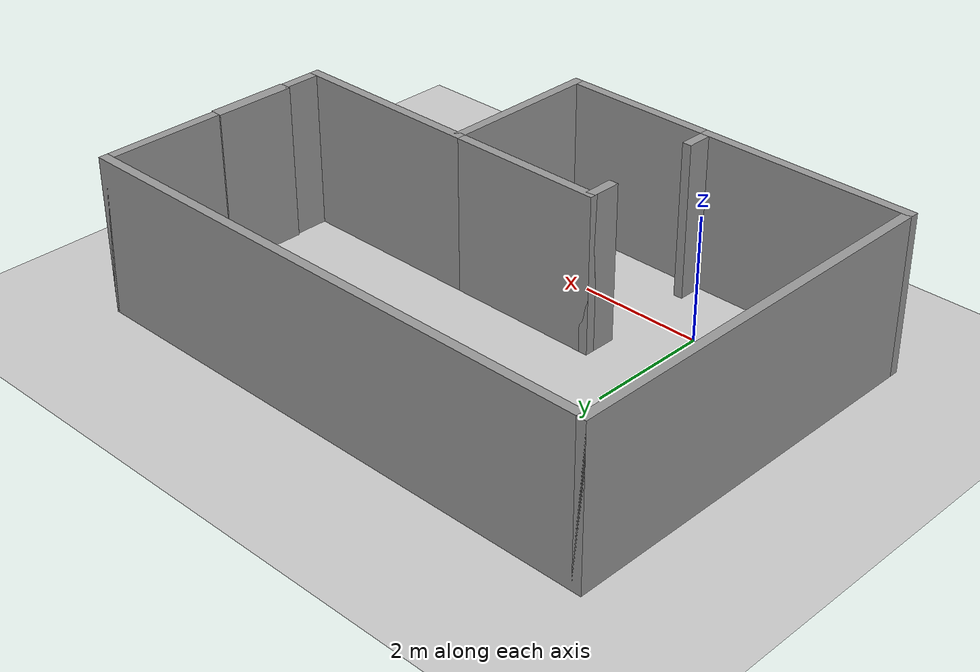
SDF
<sdf version="1.7">
 <world name="default">
  <light name="sun" type="directional">
   <pose>0 0 10 0 -0 0</pose>
   <diffuse>0.8 0.8 0.8 1</diffuse>
   <specular>0.2 0.2 0.2 1</specular>
   <attenuation>
    <range>1000</range>
    <constant>0.9</constant>
    <linear>0.01</linear>
    <quadratic>0.001</quadratic>
   </attenuation>
   <direction>-0.5 0.1 -0.9</direction>
   <spot><inner_angle>0</inner_angle><outer_angle>0</outer_angle><falloff>0</falloff></spot>
  </light>
  <model name="ground_plane">
   <static>1</static>
   <link name="link">
    <collision name="collision">
     <geometry><plane><normal>0 0 1</normal><size>100 100</size></plane></geometry>
     <surface>
      <contact><collide_bitmask>65535</collide_bitmask></contact>
      <friction><ode><mu>100</mu><mu2>50</mu2></ode></friction>
     </surface>
    </collision>
    <visual name="visual">
     <cast_shadows>0</cast_shadows>
     <geometry><plane><normal>0 0 1</normal><size>100 100</size></plane></geometry>
     <material>
      <script><uri>file://media/materials/scripts/gazebo.material</uri><name>Gazebo/Grey</name></script>
     </material>
    </visual>
   </link>
  </model>
  <gravity>0 0 -9.8</gravity>
  <magnetic_field>6e-06 2.3e-05 -4.2e-05</magnetic_field>
  <atmosphere type="adiabatic"/>
  <physics type="ode">
   <max_step_size>0.001</max_step_size>
   <real_time_factor>1</real_time_factor>
   <real_time_update_rate>1000</real_time_update_rate>
  </physics>
  <scene><ambient>0.4 0.4 0.4 1</ambient><background>0.7 0.7 0.7 1</background><shadows>1</shadows></scene>
  <spherical_coordinates>
   <surface_model>EARTH_WGS84</surface_model>
   <latitude_deg>0</latitude_deg>
   <longitude_deg>0</longitude_deg>
   <elevation>0</elevation>
   <heading_deg>0</heading_deg>
  </spherical_coordinates>
  <model name="elevator_room">
   <pose>1.99426 1.9348 0 0 -0 0</pose>
   <link name="Door_0">
    <collision name="Door_0_Collision">
     <geometry><box><size>1.3 0.2 2.5</size></box></geometry>
     <pose>0 0 1.25 0 -0 0</pose>
    </collision>
    <visual name="Door_0_Visual">
     <pose>0 0 1.25 0 -0 0</pose>
     <geometry><box><size>1.3 0.2 2.5</size></box></geometry>
     <material>
      <script><uri>file://media/materials/scripts/gazebo.material</uri><name>Gazebo/Grey</name></script>
     </material>
    </visual>
    <pose>4.42087 0.60726 0 0 -0 -1.5786</pose>
   </link>
   <link name="Wall_10">
    <collision name="Wall_10_Collision">
     <geometry><box><size>0.55 0.15 2.5</size></box></geometry>
     <pose>0 0 1.25 0 -0 0</pose>
    </collision>
    <visual name="Wall_10_Visual">
     <pose>0 0 1.25 0 -0 0</pose>
     <geometry><box><size>0.55 0.15 2.5</size></box></geometry>
     <material>
      <script><uri>file://media/materials/scripts/gazebo.material</uri><name>Gazebo/Grey</name></script>
      <ambient>1 1 1 1</ambient>
     </material>
     <meta><layer>0</layer></meta>
    </visual>
    <pose>-1.075 -2.975 0 0 -0 1.5708</pose>
   </link>
   <link name="Wall_12">
    <collision name="Wall_12_Collision">
     <geometry><box><size>3.5 0.15 2.5</size></box></geometry>
     <pose>0 0 1.25 0 -0 0</pose>
    </collision>
    <visual name="Wall_12_Visual">
     <pose>0 0 1.25 0 -0 0</pose>
     <geometry><box><size>3.5 0.15 2.5</size></box></geometry>
     <material>
      <script><uri>file://media/materials/scripts/gazebo.material</uri><name>Gazebo/Grey</name></script>
      <ambient>1 1 1 1</ambient>
     </material>
     <meta><layer>0</layer></meta>
    </visual>
    <pose>-2.75 -3.175 0 0 -0 3.14159</pose>
   </link>
   <link name="Wall_13">
    <collision name="Wall_13_Collision">
     <geometry><box><size>6.5 0.15 2.5</size></box></geometry>
     <pose>0 0 1.25 0 -0 0</pose>
    </collision>
    <visual name="Wall_13_Visual">
     <pose>0 0 1.25 0 -0 0</pose>
     <geometry><box><size>6.5 0.15 2.5</size></box></geometry>
     <material>
      <script><uri>file://media/materials/scripts/gazebo.material</uri><name>Gazebo/Grey</name></script>
      <ambient>1 1 1 1</ambient>
     </material>
     <meta><layer>0</layer></meta>
    </visual>
    <pose>-4.425 0 0 0 -0 1.5708</pose>
   </link>
   <link name="Wall_14">
    <collision name="Wall_14_Collision">
     <geometry><box><size>9 0.15 2.5</size></box></geometry>
     <pose>0 0 1.25 0 -0 0</pose>
    </collision>
    <visual name="Wall_14_Visual">
     <pose>0 0 1.25 0 -0 0</pose>
     <geometry><box><size>9 0.15 2.5</size></box></geometry>
     <material>
      <script><uri>file://media/materials/scripts/gazebo.material</uri><name>Gazebo/Grey</name></script>
      <ambient>1 1 1 1</ambient>
     </material>
     <meta><layer>0</layer></meta>
    </visual>
    <pose>0 3.175 0 0 -0 0</pose>
   </link>
   <link name="Wall_18">
    <collision name="Wall_18_Collision">
     <geometry><box><size>3.15 0.15 2.5</size></box></geometry>
     <pose>0 0 1.25 0 -0 0</pose>
    </collision>
    <visual name="Wall_18_Visual">
     <pose>0 0 1.25 0 -0 0</pose>
     <geometry><box><size>3.15 0.15 2.5</size></box></geometry>
     <material>
      <script><uri>file://media/materials/scripts/gazebo.material</uri><name>Gazebo/Grey</name></script>
      <ambient>1 1 1 1</ambient>
     </material>
     <meta><layer>0</layer></meta>
    </visual>
    <pose>2.925 -0.675 0 0 -0 3.14159</pose>
   </link>
   <link name="Wall_2">
    <collision name="Wall_2_Collision">
     <geometry><box><size>2.65 0.15 2.5</size></box></geometry>
     <pose>0 0 1.25 0 -0 0</pose>
    </collision>
    <visual name="Wall_2_Visual">
     <pose>0 0 1.25 0 -0 0</pose>
     <geometry><box><size>2.65 0.15 2.5</size></box></geometry>
     <material>
      <script><uri>file://media/materials/scripts/gazebo.material</uri><name>Gazebo/Grey</name></script>
      <ambient>1 1 1 1</ambient>
     </material>
     <meta><layer>0</layer></meta>
    </visual>
    <pose>0.175 -0.675 0 0 -0 0</pose>
   </link>
   <link name="Wall_20">
    <collision name="Wall_20_Collision">
     <geometry><box><size>2 0.15 2.5</size></box></geometry>
     <pose>0 0 1.25 0 -0 0</pose>
    </collision>
    <visual name="Wall_20_Visual">
     <pose>0 0 1.25 0 -0 0</pose>
     <geometry><box><size>2 0.15 2.5</size></box></geometry>
     <material>
      <script><uri>file://media/materials/scripts/gazebo.material</uri><name>Gazebo/Grey</name></script>
      <ambient>1 1 1 1</ambient>
     </material>
     <meta><layer>0</layer></meta>
    </visual>
    <pose>4.425 2.25 0 0 -0 -1.5708</pose>
   </link>
   <link name="Wall_22">
    <collision name="Wall_22_Collision">
     <geometry><box><size>0.75 0.15 2.5</size></box></geometry>
     <pose>0 0 1.25 0 -0 0</pose>
    </collision>
    <visual name="Wall_22_Visual">
     <pose>0 0 1.25 0 -0 0</pose>
     <geometry><box><size>0.75 0.15 2.5</size></box></geometry>
     <material>
      <script><uri>file://media/materials/scripts/gazebo.material</uri><name>Gazebo/Grey</name></script>
      <ambient>1 1 1 1</ambient>
     </material>
     <meta><layer>0</layer></meta>
    </visual>
    <pose>4.425 -0.375 0 0 -0 1.5708</pose>
   </link>
   <link name="Wall_3">
    <collision name="Wall_3_Collision">
     <geometry><box><size>2.65 0.15 2.5</size></box></geometry>
     <pose>0 0 1.25 0 -0 0</pose>
    </collision>
    <visual name="Wall_3_Visual">
     <pose>0 0 1.25 0 -0 0</pose>
     <geometry><box><size>2.65 0.15 2.5</size></box></geometry>
     <material>
      <script><uri>file://media/materials/scripts/gazebo.material</uri><name>Gazebo/Grey</name></script>
      <ambient>1 1 1 1</ambient>
     </material>
     <meta><layer>0</layer></meta>
    </visual>
    <pose>1.425 -1.925 0 0 -0 -1.5708</pose>
   </link>
   <link name="Wall_4">
    <collision name="Wall_4_Collision">
     <geometry><box><size>2.65 0.15 2.5</size></box></geometry>
     <pose>0 0 1.25 0 -0 0</pose>
    </collision>
    <visual name="Wall_4_Visual">
     <pose>0 0 1.25 0 -0 0</pose>
     <geometry><box><size>2.65 0.15 2.5</size></box></geometry>
     <material>
      <script><uri>file://media/materials/scripts/gazebo.material</uri><name>Gazebo/Grey</name></script>
      <ambient>1 1 1 1</ambient>
     </material>
     <meta><layer>0</layer></meta>
    </visual>
    <pose>0.175 -3.175 0 0 -0 3.14159</pose>
   </link>
   <link name="Wall_8">
    <collision name="Wall_8_Collision">
     <geometry><box><size>0.55 0.15 2.5</size></box></geometry>
     <pose>0 0 1.25 0 -0 0</pose>
    </collision>
    <visual name="Wall_8_Visual">
     <pose>0 0 1.25 0 -0 0</pose>
     <geometry><box><size>0.55 0.15 2.5</size></box></geometry>
     <material>
      <script><uri>file://media/materials/scripts/gazebo.material</uri><name>Gazebo/Grey</name></script>
      <ambient>1 1 1 1</ambient>
     </material>
     <meta><layer>0</layer></meta>
    </visual>
    <pose>-1.075 -0.875 0 0 -0 -1.5708</pose>
   </link>
   <static>1</static>
  </model>
 </world>
</sdf>
